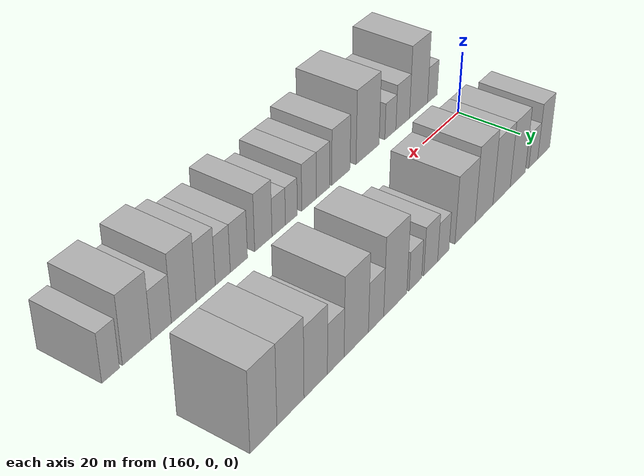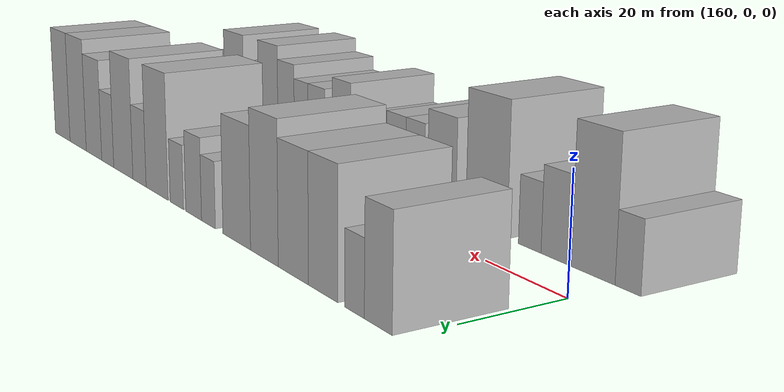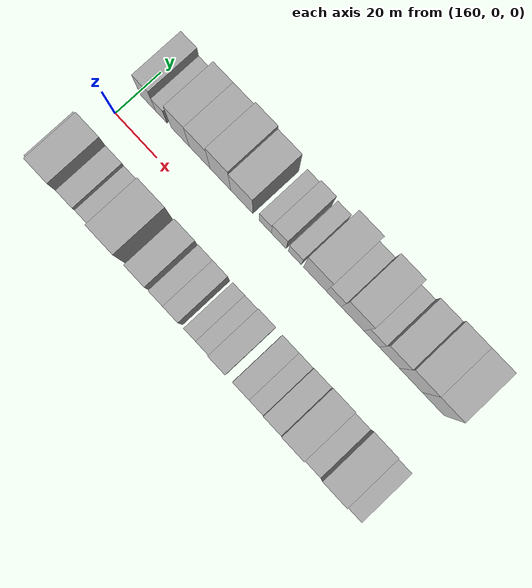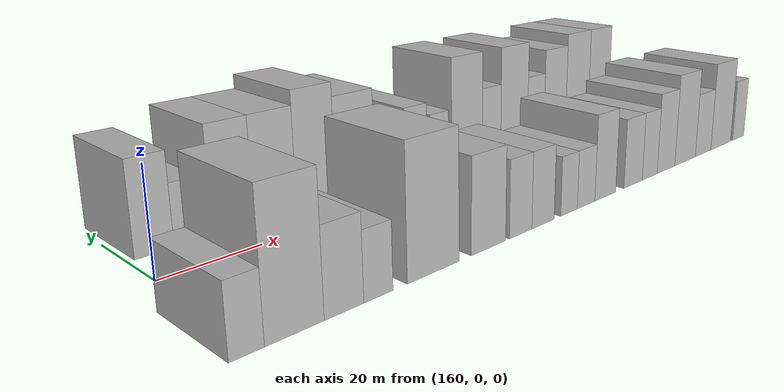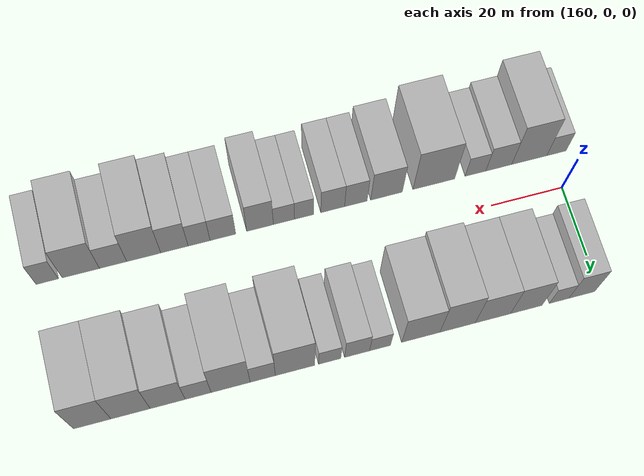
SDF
<sdf version="1.6">
 <world name="default">
  <model name="building_18">
   <static>1</static>
   <pose>164.9100 20.0000 0 0.000000 0.000000 1.570796</pose>
   <link name="link">
    <pose>0 0 9.00 0 0 0</pose>
    <collision name="collision"><geometry><box><size>20.0000 7.2470 18.0000</size></box></geometry></collision>
    <visual name="visual">
     <cast_shadows>0</cast_shadows>
     <geometry><box><size>20.0000 7.2470 18.0000</size></box></geometry>
     <material>
      <script>
       <uri>model://HANNAS_wall/materials/scripts</uri>
       <uri>model://HANNAS_wall/materials/textures</uri>
       <name>vrc/HANNAS_wall</name>
      </script>
     </material>
    </visual>
   </link>
  </model>
  <model name="building_19">
   <static>1</static>
   <pose>171.2195 20.0000 0 0.000000 0.000000 1.570796</pose>
   <link name="link">
    <pose>0 0 6.00 0 0 0</pose>
    <collision name="collision"><geometry><box><size>20.0000 5.3720 12.0000</size></box></geometry></collision>
    <visual name="visual">
     <cast_shadows>0</cast_shadows>
     <geometry><box><size>20.0000 5.3720 12.0000</size></box></geometry>
     <material>
      <script>
       <uri>model://HANNAS_wall/materials/scripts</uri>
       <uri>model://HANNAS_wall/materials/textures</uri>
       <name>vrc/HANNAS_wall</name>
      </script>
     </material>
    </visual>
   </link>
  </model>
  <model name="building_20">
   <static>1</static>
   <pose>180.2682 20.0000 0 0.000000 0.000000 1.570796</pose>
   <link name="link">
    <pose>0 0 10.50 0 0 0</pose>
    <collision name="collision"><geometry><box><size>20.0000 8.7254 21.0000</size></box></geometry></collision>
    <visual name="visual">
     <cast_shadows>0</cast_shadows>
     <geometry><box><size>20.0000 8.7254 21.0000</size></box></geometry>
     <material>
      <script>
       <uri>model://HANNAS_wall/materials/scripts</uri>
       <uri>model://HANNAS_wall/materials/textures</uri>
       <name>vrc/HANNAS_wall</name>
      </script>
     </material>
    </visual>
   </link>
  </model>
  <model name="building_21">
   <static>1</static>
   <pose>189.4746 20.0000 0 0.000000 0.000000 1.570796</pose>
   <link name="link">
    <pose>0 0 10.50 0 0 0</pose>
    <collision name="collision"><geometry><box><size>20.0000 9.6873 21.0000</size></box></geometry></collision>
    <visual name="visual">
     <cast_shadows>0</cast_shadows>
     <geometry><box><size>20.0000 9.6873 21.0000</size></box></geometry>
     <material>
      <script>
       <uri>model://HANNAS_wall/materials/scripts</uri>
       <uri>model://HANNAS_wall/materials/textures</uri>
       <name>vrc/HANNAS_wall</name>
      </script>
     </material>
    </visual>
   </link>
  </model>
  <model name="building_22">
   <static>1</static>
   <pose>199.1271 20.0000 0 0.000000 0.000000 1.570796</pose>
   <link name="link">
    <pose>0 0 12.00 0 0 0</pose>
    <collision name="collision"><geometry><box><size>20.0000 9.6176 24.0000</size></box></geometry></collision>
    <visual name="visual">
     <cast_shadows>0</cast_shadows>
     <geometry><box><size>20.0000 9.6176 24.0000</size></box></geometry>
     <material>
      <script>
       <uri>model://HANNAS_wall/materials/scripts</uri>
       <uri>model://HANNAS_wall/materials/textures</uri>
       <name>vrc/HANNAS_wall</name>
      </script>
     </material>
    </visual>
   </link>
  </model>
  <model name="building_23">
   <static>1</static>
   <pose>209.1204 20.0000 0 0.000000 0.000000 1.570796</pose>
   <link name="link">
    <pose>0 0 10.50 0 0 0</pose>
    <collision name="collision"><geometry><box><size>20.0000 10.3689 21.0000</size></box></geometry></collision>
    <visual name="visual">
     <cast_shadows>0</cast_shadows>
     <geometry><box><size>20.0000 10.3689 21.0000</size></box></geometry>
     <material>
      <script>
       <uri>model://HANNAS_wall/materials/scripts</uri>
       <uri>model://HANNAS_wall/materials/textures</uri>
       <name>vrc/HANNAS_wall</name>
      </script>
     </material>
    </visual>
   </link>
  </model>
  <model name="building_24">
   <static>1</static>
   <pose>220.1237 20.0000 0 0.000000 0.000000 1.570796</pose>
   <link name="link">
    <pose>0 0 6.00 0 0 0</pose>
    <collision name="collision"><geometry><box><size>20.0000 5.6377 12.0000</size></box></geometry></collision>
    <visual name="visual">
     <cast_shadows>0</cast_shadows>
     <geometry><box><size>20.0000 5.6377 12.0000</size></box></geometry>
     <material>
      <script>
       <uri>model://HANNAS_wall/materials/scripts</uri>
       <uri>model://HANNAS_wall/materials/textures</uri>
       <name>vrc/HANNAS_wall</name>
      </script>
     </material>
    </visual>
   </link>
  </model>
  <model name="building_25">
   <static>1</static>
   <pose>226.2990 20.0000 0 0.000000 0.000000 1.570796</pose>
   <link name="link">
    <pose>0 0 7.50 0 0 0</pose>
    <collision name="collision"><geometry><box><size>20.0000 6.7131 15.0000</size></box></geometry></collision>
    <visual name="visual">
     <cast_shadows>0</cast_shadows>
     <geometry><box><size>20.0000 6.7131 15.0000</size></box></geometry>
     <material>
      <script>
       <uri>model://HANNAS_wall/materials/scripts</uri>
       <uri>model://HANNAS_wall/materials/textures</uri>
       <name>vrc/HANNAS_wall</name>
      </script>
     </material>
    </visual>
   </link>
  </model>
  <model name="building_26">
   <static>1</static>
   <pose>233.6371 20.0000 0 0.000000 0.000000 1.570796</pose>
   <link name="link">
    <pose>0 0 6.00 0 0 0</pose>
    <collision name="collision"><geometry><box><size>20.0000 5.9630 12.0000</size></box></geometry></collision>
    <visual name="visual">
     <cast_shadows>0</cast_shadows>
     <geometry><box><size>20.0000 5.9630 12.0000</size></box></geometry>
     <material>
      <script>
       <uri>model://HANNAS_wall/materials/scripts</uri>
       <uri>model://HANNAS_wall/materials/textures</uri>
       <name>vrc/HANNAS_wall</name>
      </script>
     </material>
    </visual>
   </link>
  </model>
  <model name="building_27">
   <static>1</static>
   <pose>242.8581 20.0000 0 0.000000 0.000000 1.570796</pose>
   <link name="link">
    <pose>0 0 12.00 0 0 0</pose>
    <collision name="collision"><geometry><box><size>20.0000 10.4790 24.0000</size></box></geometry></collision>
    <visual name="visual">
     <cast_shadows>0</cast_shadows>
     <geometry><box><size>20.0000 10.4790 24.0000</size></box></geometry>
     <material>
      <script>
       <uri>model://HANNAS_wall/materials/scripts</uri>
       <uri>model://HANNAS_wall/materials/textures</uri>
       <name>vrc/HANNAS_wall</name>
      </script>
     </material>
    </visual>
   </link>
  </model>
  <model name="building_28">
   <static>1</static>
   <pose>251.4309 20.0000 0 0.000000 0.000000 1.570796</pose>
   <link name="link">
    <pose>0 0 7.50 0 0 0</pose>
    <collision name="collision"><geometry><box><size>20.0000 6.6667 15.0000</size></box></geometry></collision>
    <visual name="visual">
     <cast_shadows>0</cast_shadows>
     <geometry><box><size>20.0000 6.6667 15.0000</size></box></geometry>
     <material>
      <script>
       <uri>model://HANNAS_wall/materials/scripts</uri>
       <uri>model://HANNAS_wall/materials/textures</uri>
       <name>vrc/HANNAS_wall</name>
      </script>
     </material>
    </visual>
   </link>
  </model>
  <model name="building_29">
   <static>1</static>
   <pose>259.8941 20.0000 0 0.000000 0.000000 1.570796</pose>
   <link name="link">
    <pose>0 0 12.00 0 0 0</pose>
    <collision name="collision"><geometry><box><size>20.0000 10.2597 24.0000</size></box></geometry></collision>
    <visual name="visual">
     <cast_shadows>0</cast_shadows>
     <geometry><box><size>20.0000 10.2597 24.0000</size></box></geometry>
     <material>
      <script>
       <uri>model://HANNAS_wall/materials/scripts</uri>
       <uri>model://HANNAS_wall/materials/textures</uri>
       <name>vrc/HANNAS_wall</name>
      </script>
     </material>
    </visual>
   </link>
  </model>
  <model name="building_30">
   <static>1</static>
   <pose>268.4107 20.0000 0 0.000000 0.000000 1.570796</pose>
   <link name="link">
    <pose>0 0 7.50 0 0 0</pose>
    <collision name="collision"><geometry><box><size>20.0000 6.7736 15.0000</size></box></geometry></collision>
    <visual name="visual">
     <cast_shadows>0</cast_shadows>
     <geometry><box><size>20.0000 6.7736 15.0000</size></box></geometry>
     <material>
      <script>
       <uri>model://HANNAS_wall/materials/scripts</uri>
       <uri>model://HANNAS_wall/materials/textures</uri>
       <name>vrc/HANNAS_wall</name>
      </script>
     </material>
    </visual>
   </link>
  </model>
  <model name="building_31">
   <static>1</static>
   <pose>276.3844 20.0000 0 0.000000 0.000000 1.570796</pose>
   <link name="link">
    <pose>0 0 10.50 0 0 0</pose>
    <collision name="collision"><geometry><box><size>20.0000 9.1739 21.0000</size></box></geometry></collision>
    <visual name="visual">
     <cast_shadows>0</cast_shadows>
     <geometry><box><size>20.0000 9.1739 21.0000</size></box></geometry>
     <material>
      <script>
       <uri>model://HANNAS_wall/materials/scripts</uri>
       <uri>model://HANNAS_wall/materials/textures</uri>
       <name>vrc/HANNAS_wall</name>
      </script>
     </material>
    </visual>
   </link>
  </model>
  <model name="building_32">
   <static>1</static>
   <pose>286.0506 20.0000 0 0.000000 0.000000 1.570796</pose>
   <link name="link">
    <pose>0 0 12.00 0 0 0</pose>
    <collision name="collision"><geometry><box><size>20.0000 10.1586 24.0000</size></box></geometry></collision>
    <visual name="visual">
     <cast_shadows>0</cast_shadows>
     <geometry><box><size>20.0000 10.1586 24.0000</size></box></geometry>
     <material>
      <script>
       <uri>model://HANNAS_wall/materials/scripts</uri>
       <uri>model://HANNAS_wall/materials/textures</uri>
       <name>vrc/HANNAS_wall</name>
      </script>
     </material>
    </visual>
   </link>
  </model>
  <model name="building_33">
   <static>1</static>
   <pose>295.9766 20.0000 0 0.000000 0.000000 1.570796</pose>
   <link name="link">
    <pose>0 0 12.00 0 0 0</pose>
    <collision name="collision"><geometry><box><size>20.0000 9.6934 24.0000</size></box></geometry></collision>
    <visual name="visual">
     <cast_shadows>0</cast_shadows>
     <geometry><box><size>20.0000 9.6934 24.0000</size></box></geometry>
     <material>
      <script>
       <uri>model://HANNAS_wall/materials/scripts</uri>
       <uri>model://HANNAS_wall/materials/textures</uri>
       <name>vrc/HANNAS_wall</name>
      </script>
     </material>
    </visual>
   </link>
  </model>
  <model name="building_49">
   <static>1</static>
   <pose>158.1245 -20.0000 0 0.000000 0.000000 1.570796</pose>
   <link name="link">
    <pose>0 0 6.00 0 0 0</pose>
    <collision name="collision"><geometry><box><size>20.0000 5.5873 12.0000</size></box></geometry></collision>
    <visual name="visual">
     <cast_shadows>0</cast_shadows>
     <geometry><box><size>20.0000 5.5873 12.0000</size></box></geometry>
     <material>
      <script>
       <uri>model://HANNAS_wall/materials/scripts</uri>
       <uri>model://HANNAS_wall/materials/textures</uri>
       <name>vrc/HANNAS_wall</name>
      </script>
     </material>
    </visual>
   </link>
  </model>
  <model name="building_50">
   <static>1</static>
   <pose>165.9879 -20.0000 0 0.000000 0.000000 1.570796</pose>
   <link name="link">
    <pose>0 0 12.00 0 0 0</pose>
    <collision name="collision"><geometry><box><size>20.0000 10.1395 24.0000</size></box></geometry></collision>
    <visual name="visual">
     <cast_shadows>0</cast_shadows>
     <geometry><box><size>20.0000 10.1395 24.0000</size></box></geometry>
     <material>
      <script>
       <uri>model://HANNAS_wall/materials/scripts</uri>
       <uri>model://HANNAS_wall/materials/textures</uri>
       <name>vrc/HANNAS_wall</name>
      </script>
     </material>
    </visual>
   </link>
  </model>
  <model name="building_51">
   <static>1</static>
   <pose>174.7690 -20.0000 0 0.000000 0.000000 1.570796</pose>
   <link name="link">
    <pose>0 0 7.50 0 0 0</pose>
    <collision name="collision"><geometry><box><size>20.0000 7.4229 15.0000</size></box></geometry></collision>
    <visual name="visual">
     <cast_shadows>0</cast_shadows>
     <geometry><box><size>20.0000 7.4229 15.0000</size></box></geometry>
     <material>
      <script>
       <uri>model://HANNAS_wall/materials/scripts</uri>
       <uri>model://HANNAS_wall/materials/textures</uri>
       <name>vrc/HANNAS_wall</name>
      </script>
     </material>
    </visual>
   </link>
  </model>
  <model name="building_52">
   <static>1</static>
   <pose>181.4271 -20.0000 0 0.000000 0.000000 1.570796</pose>
   <link name="link">
    <pose>0 0 6.00 0 0 0</pose>
    <collision name="collision"><geometry><box><size>20.0000 5.8933 12.0000</size></box></geometry></collision>
    <visual name="visual">
     <cast_shadows>0</cast_shadows>
     <geometry><box><size>20.0000 5.8933 12.0000</size></box></geometry>
     <material>
      <script>
       <uri>model://HANNAS_wall/materials/scripts</uri>
       <uri>model://HANNAS_wall/materials/textures</uri>
       <name>vrc/HANNAS_wall</name>
      </script>
     </material>
    </visual>
   </link>
  </model>
  <model name="building_53">
   <static>1</static>
   <pose>193.2833 -20.0000 0 0.000000 0.000000 1.570796</pose>
   <link name="link">
    <pose>0 0 12.00 0 0 0</pose>
    <collision name="collision"><geometry><box><size>20.0000 11.8191 24.0000</size></box></geometry></collision>
    <visual name="visual">
     <cast_shadows>0</cast_shadows>
     <geometry><box><size>20.0000 11.8191 24.0000</size></box></geometry>
     <material>
      <script>
       <uri>model://HANNAS_wall/materials/scripts</uri>
       <uri>model://HANNAS_wall/materials/textures</uri>
       <name>vrc/HANNAS_wall</name>
      </script>
     </material>
    </visual>
   </link>
  </model>
  <model name="building_54">
   <static>1</static>
   <pose>206.6568 -20.0000 0 0.000000 0.000000 1.570796</pose>
   <link name="link">
    <pose>0 0 9.00 0 0 0</pose>
    <collision name="collision"><geometry><box><size>20.0000 8.9279 18.0000</size></box></geometry></collision>
    <visual name="visual">
     <cast_shadows>0</cast_shadows>
     <geometry><box><size>20.0000 8.9279 18.0000</size></box></geometry>
     <material>
      <script>
       <uri>model://HANNAS_wall/materials/scripts</uri>
       <uri>model://HANNAS_wall/materials/textures</uri>
       <name>vrc/HANNAS_wall</name>
      </script>
     </material>
    </visual>
   </link>
  </model>
  <model name="building_55">
   <static>1</static>
   <pose>215.2826 -20.0000 0 0.000000 0.000000 1.570796</pose>
   <link name="link">
    <pose>0 0 7.50 0 0 0</pose>
    <collision name="collision"><geometry><box><size>20.0000 6.3238 15.0000</size></box></geometry></collision>
    <visual name="visual">
     <cast_shadows>0</cast_shadows>
     <geometry><box><size>20.0000 6.3238 15.0000</size></box></geometry>
     <material>
      <script>
       <uri>model://HANNAS_wall/materials/scripts</uri>
       <uri>model://HANNAS_wall/materials/textures</uri>
       <name>vrc/HANNAS_wall</name>
      </script>
     </material>
    </visual>
   </link>
  </model>
  <model name="building_56">
   <static>1</static>
   <pose>221.7732 -20.0000 0 0.000000 0.000000 1.570796</pose>
   <link name="link">
    <pose>0 0 7.50 0 0 0</pose>
    <collision name="collision"><geometry><box><size>20.0000 6.6573 15.0000</size></box></geometry></collision>
    <visual name="visual">
     <cast_shadows>0</cast_shadows>
     <geometry><box><size>20.0000 6.6573 15.0000</size></box></geometry>
     <material>
      <script>
       <uri>model://HANNAS_wall/materials/scripts</uri>
       <uri>model://HANNAS_wall/materials/textures</uri>
       <name>vrc/HANNAS_wall</name>
      </script>
     </material>
    </visual>
   </link>
  </model>
  <model name="building_57">
   <static>1</static>
   <pose>229.7587 -20.0000 0 0.000000 0.000000 1.570796</pose>
   <link name="link">
    <pose>0 0 6.00 0 0 0</pose>
    <collision name="collision"><geometry><box><size>20.0000 5.3136 12.0000</size></box></geometry></collision>
    <visual name="visual">
     <cast_shadows>0</cast_shadows>
     <geometry><box><size>20.0000 5.3136 12.0000</size></box></geometry>
     <material>
      <script>
       <uri>model://HANNAS_wall/materials/scripts</uri>
       <uri>model://HANNAS_wall/materials/textures</uri>
       <name>vrc/HANNAS_wall</name>
      </script>
     </material>
    </visual>
   </link>
  </model>
  <model name="building_58">
   <static>1</static>
   <pose>235.3488 -20.0000 0 0.000000 0.000000 1.570796</pose>
   <link name="link">
    <pose>0 0 6.00 0 0 0</pose>
    <collision name="collision"><geometry><box><size>20.0000 5.8667 12.0000</size></box></geometry></collision>
    <visual name="visual">
     <cast_shadows>0</cast_shadows>
     <geometry><box><size>20.0000 5.8667 12.0000</size></box></geometry>
     <material>
      <script>
       <uri>model://HANNAS_wall/materials/scripts</uri>
       <uri>model://HANNAS_wall/materials/textures</uri>
       <name>vrc/HANNAS_wall</name>
      </script>
     </material>
    </visual>
   </link>
  </model>
  <model name="building_59">
   <static>1</static>
   <pose>241.9731 -20.0000 0 0.000000 0.000000 1.570796</pose>
   <link name="link">
    <pose>0 0 9.00 0 0 0</pose>
    <collision name="collision"><geometry><box><size>20.0000 7.3818 18.0000</size></box></geometry></collision>
    <visual name="visual">
     <cast_shadows>0</cast_shadows>
     <geometry><box><size>20.0000 7.3818 18.0000</size></box></geometry>
     <material>
      <script>
       <uri>model://HANNAS_wall/materials/scripts</uri>
       <uri>model://HANNAS_wall/materials/textures</uri>
       <name>vrc/HANNAS_wall</name>
      </script>
     </material>
    </visual>
   </link>
  </model>
  <model name="building_60">
   <static>1</static>
   <pose>252.1902 -20.0000 0 0.000000 0.000000 1.570796</pose>
   <link name="link">
    <pose>0 0 7.50 0 0 0</pose>
    <collision name="collision"><geometry><box><size>20.0000 7.0524 15.0000</size></box></geometry></collision>
    <visual name="visual">
     <cast_shadows>0</cast_shadows>
     <geometry><box><size>20.0000 7.0524 15.0000</size></box></geometry>
     <material>
      <script>
       <uri>model://HANNAS_wall/materials/scripts</uri>
       <uri>model://HANNAS_wall/materials/textures</uri>
       <name>vrc/HANNAS_wall</name>
      </script>
     </material>
    </visual>
   </link>
  </model>
  <model name="building_61">
   <static>1</static>
   <pose>258.7217 -20.0000 0 0.000000 0.000000 1.570796</pose>
   <link name="link">
    <pose>0 0 7.50 0 0 0</pose>
    <collision name="collision"><geometry><box><size>20.0000 6.0106 15.0000</size></box></geometry></collision>
    <visual name="visual">
     <cast_shadows>0</cast_shadows>
     <geometry><box><size>20.0000 6.0106 15.0000</size></box></geometry>
     <material>
      <script>
       <uri>model://HANNAS_wall/materials/scripts</uri>
       <uri>model://HANNAS_wall/materials/textures</uri>
       <name>vrc/HANNAS_wall</name>
      </script>
     </material>
    </visual>
   </link>
  </model>
  <model name="building_62">
   <static>1</static>
   <pose>265.4636 -20.0000 0 0.000000 0.000000 1.570796</pose>
   <link name="link">
    <pose>0 0 9.00 0 0 0</pose>
    <collision name="collision"><geometry><box><size>20.0000 7.4732 18.0000</size></box></geometry></collision>
    <visual name="visual">
     <cast_shadows>0</cast_shadows>
     <geometry><box><size>20.0000 7.4732 18.0000</size></box></geometry>
     <material>
      <script>
       <uri>model://HANNAS_wall/materials/scripts</uri>
       <uri>model://HANNAS_wall/materials/textures</uri>
       <name>vrc/HANNAS_wall</name>
      </script>
     </material>
    </visual>
   </link>
  </model>
  <model name="building_63">
   <static>1</static>
   <pose>273.8316 -20.0000 0 0.000000 0.000000 1.570796</pose>
   <link name="link">
    <pose>0 0 10.50 0 0 0</pose>
    <collision name="collision"><geometry><box><size>20.0000 9.2628 21.0000</size></box></geometry></collision>
    <visual name="visual">
     <cast_shadows>0</cast_shadows>
     <geometry><box><size>20.0000 9.2628 21.0000</size></box></geometry>
     <material>
      <script>
       <uri>model://HANNAS_wall/materials/scripts</uri>
       <uri>model://HANNAS_wall/materials/textures</uri>
       <name>vrc/HANNAS_wall</name>
      </script>
     </material>
    </visual>
   </link>
  </model>
  <model name="building_64">
   <static>1</static>
   <pose>282.1488 -20.0000 0 0.000000 0.000000 1.570796</pose>
   <link name="link">
    <pose>0 0 7.50 0 0 0</pose>
    <collision name="collision"><geometry><box><size>20.0000 7.3715 15.0000</size></box></geometry></collision>
    <visual name="visual">
     <cast_shadows>0</cast_shadows>
     <geometry><box><size>20.0000 7.3715 15.0000</size></box></geometry>
     <material>
      <script>
       <uri>model://HANNAS_wall/materials/scripts</uri>
       <uri>model://HANNAS_wall/materials/textures</uri>
       <name>vrc/HANNAS_wall</name>
      </script>
     </material>
    </visual>
   </link>
  </model>
  <model name="building_65">
   <static>1</static>
   <pose>290.8490 -20.0000 0 0.000000 0.000000 1.570796</pose>
   <link name="link">
    <pose>0 0 10.50 0 0 0</pose>
    <collision name="collision"><geometry><box><size>20.0000 10.0290 21.0000</size></box></geometry></collision>
    <visual name="visual">
     <cast_shadows>0</cast_shadows>
     <geometry><box><size>20.0000 10.0290 21.0000</size></box></geometry>
     <material>
      <script>
       <uri>model://HANNAS_wall/materials/scripts</uri>
       <uri>model://HANNAS_wall/materials/textures</uri>
       <name>vrc/HANNAS_wall</name>
      </script>
     </material>
    </visual>
   </link>
  </model>
  <model name="building_66">
   <static>1</static>
   <pose>299.8639 -20.0000 0 0.000000 0.000000 1.570796</pose>
   <link name="link">
    <pose>0 0 7.50 0 0 0</pose>
    <collision name="collision"><geometry><box><size>20.0000 6.0010 15.0000</size></box></geometry></collision>
    <visual name="visual">
     <cast_shadows>0</cast_shadows>
     <geometry><box><size>20.0000 6.0010 15.0000</size></box></geometry>
     <material>
      <script>
       <uri>model://HANNAS_wall/materials/scripts</uri>
       <uri>model://HANNAS_wall/materials/textures</uri>
       <name>vrc/HANNAS_wall</name>
      </script>
     </material>
    </visual>
   </link>
  </model>
 </world>
</sdf>
